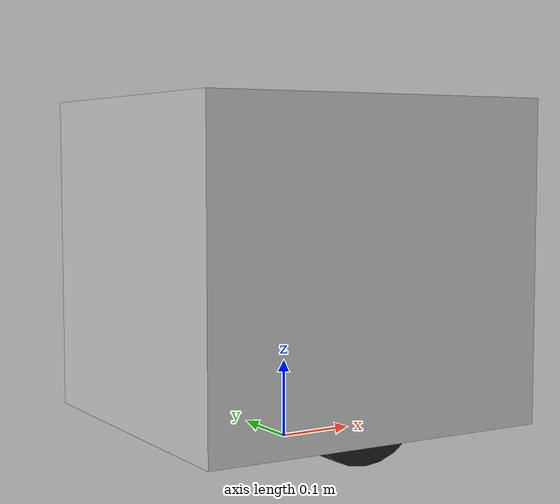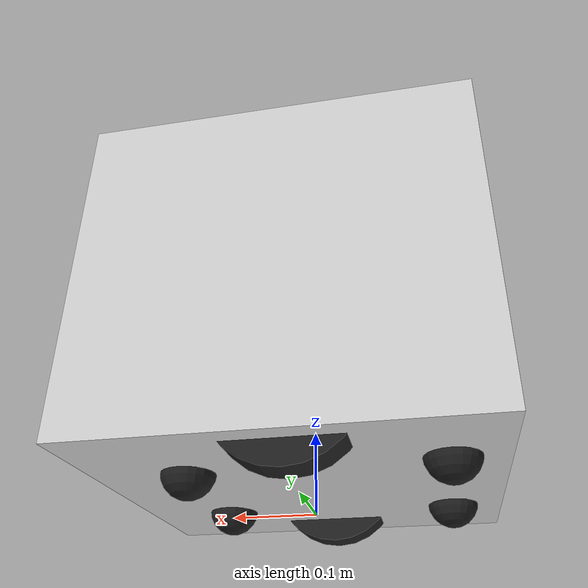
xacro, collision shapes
<?xml version="1.0" ?>
<robot name="slamtec" xmlns:xacro="http://www.ros.org/wiki/xacro">

    <xacro:property name="m_to_mm" value="0.001 0.001 0.001"/>
    <xacro:property name="mesh_path" value="package://kaair_description/meshes/"/>

    <link name="base_footprint"/>

    <link name="slamtec_base_link">
      <!-- visual -->
      <visual>
        <geometry>
          <mesh filename="${mesh_path}slamtec/visual/slamtec_base.stl" scale="${m_to_mm}"/>
        </geometry>
        <origin xyz="0 0 0" rpy="0 0 0"/>
        <material name="light_gray"/>
      </visual>
      <!-- collision -->
      <collision>
        <origin xyz="0.008259 0.0 0.148485" rpy="0 0 0"/>
        <geometry>
            <box size="0.460 0.430 0.409"/>
        </geometry>
      </collision>
    </link>

    <link name="S2RPLidar_frame">
        <visual>
            <geometry>
                <mesh filename="${mesh_path}slamtec/visual/S2RPLIDAR.stl" scale="${m_to_mm}"/>
            </geometry>
            <origin xyz="0 0 0" rpy="0 0 0"/>
            <material name="black"/>
        </visual>
    </link>

    <link name="robot_base_link"/>

    <link name="left_wheel">
        <!-- visual -->
        <visual>
            <geometry>
            <mesh filename="${mesh_path}slamtec/visual/left_wheel.stl" scale="${m_to_mm}"/>
            </geometry>
            <origin xyz="0 0 0" rpy="0 0 0"/>
            <material name="black"/>
        </visual>

      <!-- collision -->
        <collision>
            <geometry>
                <cylinder radius="0.085" length="0.041"/>
            </geometry>
            <origin xyz="0 0 0" rpy="1.5708 0 0"/>
        </collision>
    </link>

    <link name="right_wheel">
        <!-- visual -->
        <visual>
            <geometry>
            <mesh filename="${mesh_path}slamtec/visual/right_wheel.stl" scale="${m_to_mm}"/>
            </geometry>
            <origin xyz="0 0 0" rpy="0 0 0"/>
            <material name="black"/>
        </visual>

      <!-- collision -->
        <collision>
            <geometry>
                <cylinder radius="0.085" length="0.041"/>
            </geometry>
            <origin xyz="0 0 0" rpy="1.5708 0 0"/>
        </collision>
    </link>

    <link name="lf_caster">
        <!-- visual -->
        <visual>
            <geometry>
                <mesh filename="${mesh_path}slamtec/visual/caster.stl" scale="${m_to_mm}"/>
            </geometry>
            <origin xyz="0 0 0" rpy="0 0 0"/>
            <material name="black"/>
        </visual>
      <!-- collision -->
        <collision>
            <geometry>
                <sphere radius="0.0315"/>
            </geometry>
            <origin xyz="0 0 0" rpy="0 0 0"/>
        </collision>
    </link>
    <link name="rf_caster">
        <!-- visual -->
        <visual>
            <geometry>
                <mesh filename="${mesh_path}slamtec/visual/caster.stl" scale="${m_to_mm}"/>
            </geometry>
            <origin xyz="0 0 0" rpy="0 0 0"/>
            <material name="black"/>
        </visual>
      <!-- collision -->
        <collision>
            <geometry>
                <sphere radius="0.0315"/>
            </geometry>
            <origin xyz="0 0 0" rpy="0 0 0"/>
        </collision>
    </link>
    <link name="lb_caster">
        <!-- visual -->
        <visual>
            <geometry>
                <mesh filename="${mesh_path}slamtec/visual/caster.stl" scale="${m_to_mm}"/>
            </geometry>
            <origin xyz="0 0 0" rpy="0 0 0"/>
            <material name="black"/>
        </visual>
      <!-- collision -->
        <collision>
            <geometry>
                <sphere radius="0.0315"/>
            </geometry>
            <origin xyz="0 0 0" rpy="0 0 0"/>
        </collision>
    </link>
    <link name="rb_caster">
        <!-- visual -->
        <visual>
            <geometry>
                <mesh filename="${mesh_path}slamtec/visual/caster.stl" scale="${m_to_mm}"/>
            </geometry>
            <origin xyz="0 0 0" rpy="0 0 0"/>
            <material name="black"/>
        </visual>
      <!-- collision -->
        <collision>
            <geometry>
                <sphere radius="0.0315"/>
            </geometry>
            <origin xyz="0 0 0" rpy="0 0 0"/>
        </collision>
    </link>

    <joint name="footprint_to_base" type="fixed">
        <origin xyz="0.0 0.0 0.085" rpy="0 0 0"/>
        <parent link="base_footprint"/>
        <child link="slamtec_base_link"/>
    </joint>

    <joint name="base_to_robot_base" type="fixed">
        <origin xyz="-0.014838 0.0 0.352985" rpy="0 0 0"/>
        <parent link="slamtec_base_link"/>
        <child link="robot_base_link"/>
    </joint>

    <joint name="base_to_lidar" type="fixed">
        <origin xyz="0.0 0.0 0.127035" rpy="0 0 0"/>
        <parent link="slamtec_base_link"/>
        <child link="S2RPLidar_frame"/>
    </joint>

    <joint name="left_wheel_joint" type="fixed">
        <origin xyz="0.0 0.16885 0.0" rpy="0 0 0"/>
        <parent link="slamtec_base_link"/>
        <child link="left_wheel"/>
    </joint>

    <joint name="right_wheel_joint" type="fixed">
        <origin xyz="0.0 -0.16885 0.0" rpy="0 0 0"/>
        <parent link="slamtec_base_link"/>
        <child link="right_wheel"/>
    </joint>

    <joint name="lf_caster_joint" type="fixed">
        <origin xyz="0.12766 0.09 -0.0535" rpy="0 0 0"/>
        <parent link="slamtec_base_link"/>
        <child link="lf_caster"/>
    </joint>
    <joint name="rf_caster_joint" type="fixed">
        <origin xyz="0.12766 -0.09 -0.0535" rpy="0 0 0"/>
        <parent link="slamtec_base_link"/>
        <child link="rf_caster"/>
    </joint>
    <joint name="lb_caster_joint" type="fixed">
        <origin xyz="-0.16034 0.1 -0.0535" rpy="0 0 0"/>
        <parent link="slamtec_base_link"/>
        <child link="lb_caster"/>
    </joint>
    <joint name="rb_caster_joint" type="fixed">
        <origin xyz="-0.16034 -0.1 -0.0535" rpy="0 0 0"/>
        <parent link="slamtec_base_link"/>
        <child link="rb_caster"/>
    </joint>
</robot>
